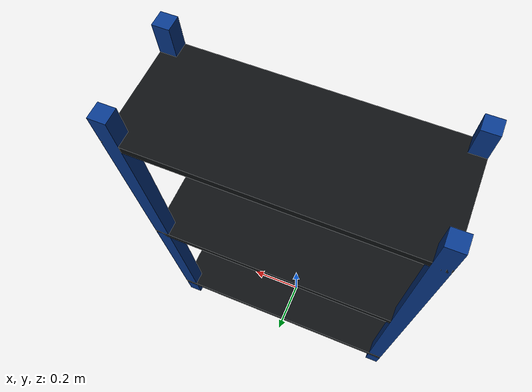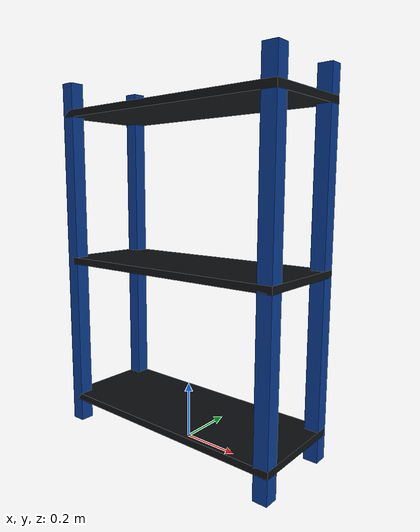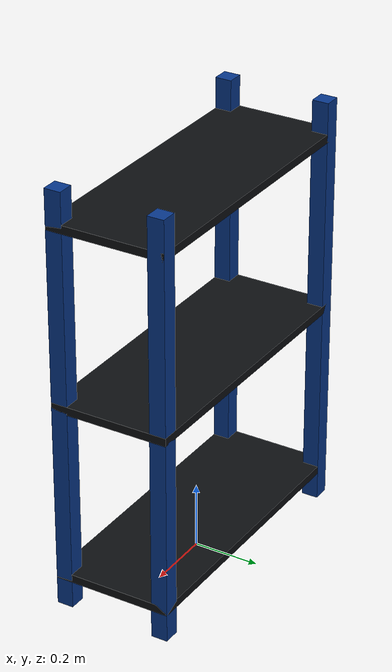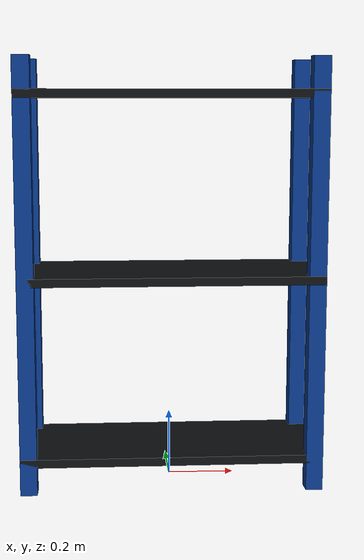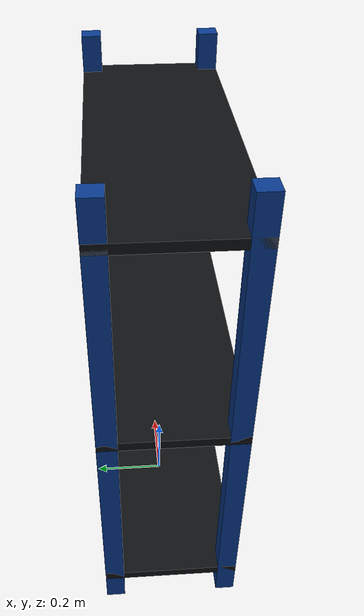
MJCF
<?xml version="1.0" encoding="utf-8"?>
<mujoco model="arena_pp_box_shelf">
  <compiler angle="radian" autolimits="true"/>
  <asset>
    <material name="shelf_blue" rgba="0.03 0.22 0.55 1" specular="0.25" shininess="0.30"/>
    <material name="shelf_dark" rgba="0.05 0.06 0.07 1" specular="0.18" shininess="0.20"/>
  </asset>
  <worldbody>
    <body name="shelf">
      <!-- Support heights match HumanoidArena's live-USD reward geometry. -->
      <geom name="base_support_collision" type="box" pos="0 0 0.0965"
            size="0.45 0.18 0.0125" material="shelf_dark"
            group="1" contype="1" conaffinity="1" condim="4"
            friction="1.0 0.05 0.01" solref="0.004 1.0" solimp="0.95 0.99 0.001"/>
      <geom name="active_support_collision" type="box" pos="0 0 0.6352"
            size="0.45 0.18 0.0125" material="shelf_dark"
            group="1" contype="1" conaffinity="1" condim="4"
            friction="1.0 0.05 0.01" solref="0.004 1.0" solimp="0.95 0.99 0.001"/>
      <geom name="upper_support_collision" type="box" pos="0 0 1.1739"
            size="0.45 0.18 0.0125" material="shelf_dark"
            group="1" contype="1" conaffinity="1" condim="4"
            friction="1.0 0.05 0.01" solref="0.004 1.0" solimp="0.95 0.99 0.001"/>

      <geom name="post_xneg_yneg" type="box" pos="-0.425 -0.155 0.64"
            size="0.025 0.025 0.64" material="shelf_blue"
            group="1" contype="1" conaffinity="1"/>
      <geom name="post_xneg_ypos" type="box" pos="-0.425 0.155 0.64"
            size="0.025 0.025 0.64" material="shelf_blue"
            group="1" contype="1" conaffinity="1"/>
      <geom name="post_xpos_yneg" type="box" pos="0.425 -0.155 0.64"
            size="0.025 0.025 0.64" material="shelf_blue"
            group="1" contype="1" conaffinity="1"/>
      <geom name="post_xpos_ypos" type="box" pos="0.425 0.155 0.64"
            size="0.025 0.025 0.64" material="shelf_blue"
            group="1" contype="1" conaffinity="1"/>
    </body>
  </worldbody>
</mujoco>
